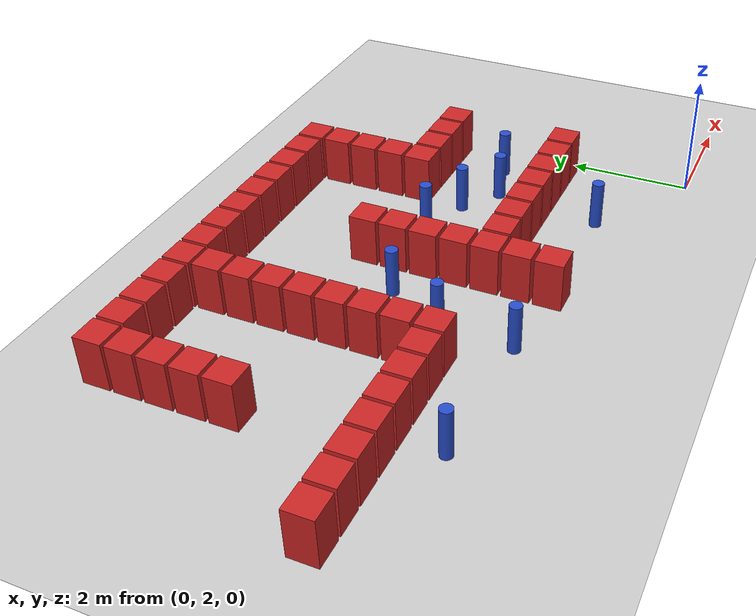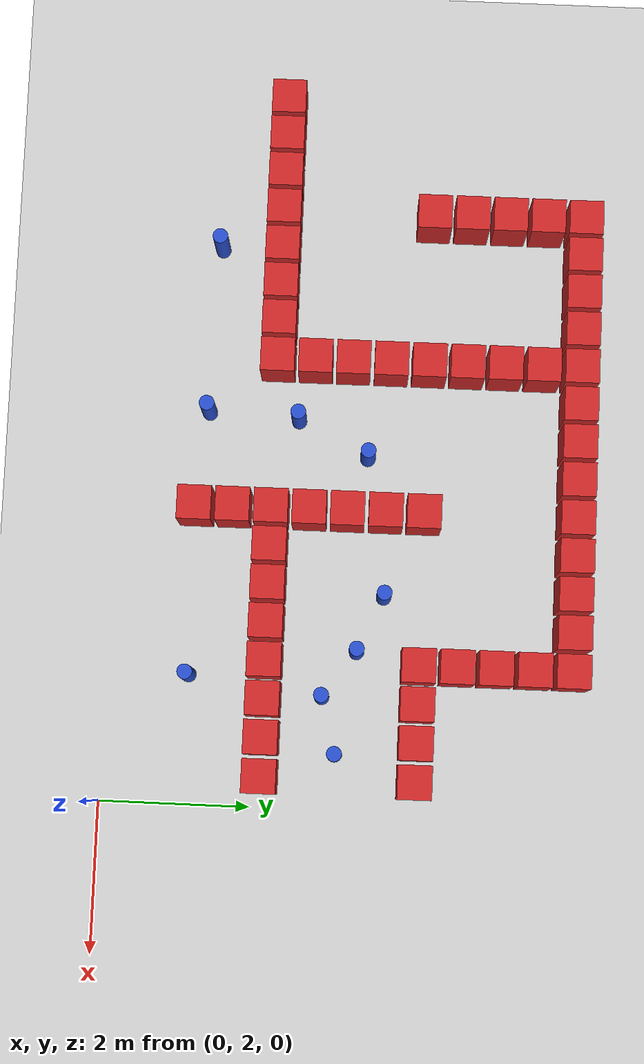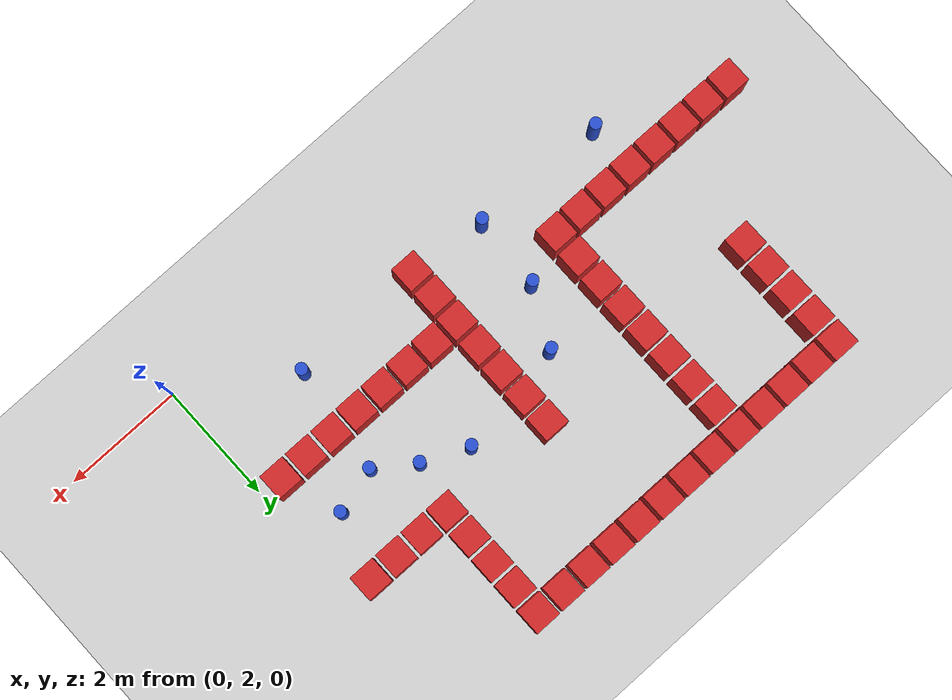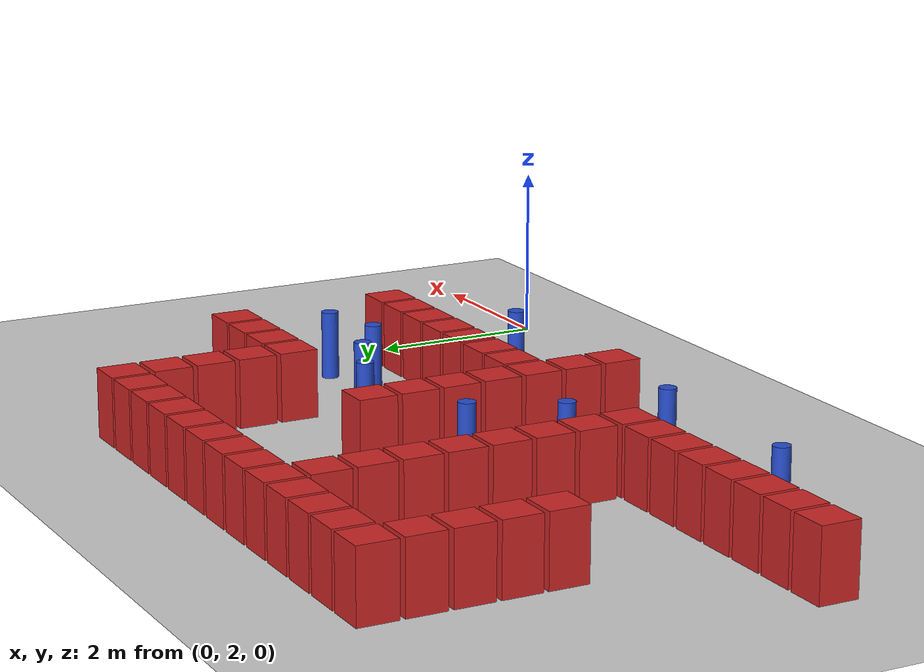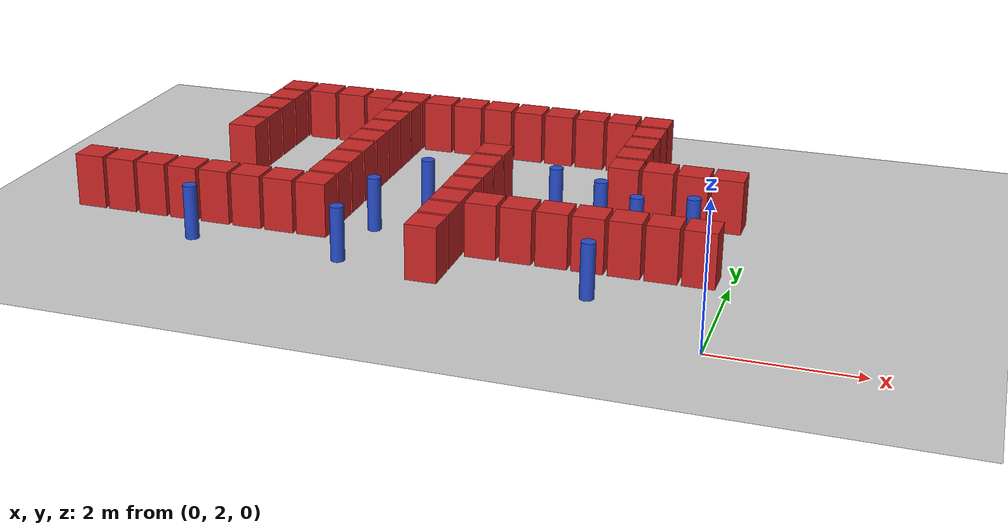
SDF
<sdf version="1.6">
 <world name="default">
  <model name="ground_plane">
   <static>1</static>
   <link name="link">
    <collision name="collision">
     <geometry><plane><normal>0 0 1</normal><size>100 100</size></plane></geometry>
     <surface><friction><ode><mu>100</mu><mu2>50</mu2></ode></friction></surface>
    </collision>
    <visual name="visual">
     <cast_shadows>0</cast_shadows>
     <geometry><plane><normal>0 0 1</normal><size>100 100</size></plane></geometry>
     <material>
      <script><uri>file://media/materials/scripts/gazebo.material</uri><name>Gazebo/Grey</name></script>
     </material>
    </visual>
   </link>
  </model>
  <model name="box_obstacle2">
   <static>0</static>
   <link name="box_obstacle">
    <pose>0 0 0.1 0 -0 0</pose>
    <inertial>
     <mass>100</mass>
     <inertia>
      <ixx>0.166667</ixx>
      <ixy>0</ixy>
      <ixz>0</ixz>
      <iyy>0.166667</iyy>
      <iyz>0</iyz>
      <izz>0.166667</izz>
     </inertia>
    </inertial>
    <collision name="collision"><geometry><box><size>0.45 0.45 0.8</size></box></geometry></collision>
    <visual name="visual">
     <geometry><box><size>0.45 0.45 0.8</size></box></geometry>
     <material>
      <script><name>Gazebo/Red</name><uri>file://media/materials/scripts/gazebo.material</uri></script>
     </material>
    </visual>
   </link>
   <pose>-9.49545 4.13973 0.299997 -3e-06 5e-06 -4e-06</pose>
  </model>
  <model name="box_obstacle5">
   <static>0</static>
   <link name="box_obstacle">
    <pose>0 0 0.1 0 -0 0</pose>
    <inertial>
     <mass>100</mass>
     <inertia>
      <ixx>0.166667</ixx>
      <ixy>0</ixy>
      <ixz>0</ixz>
      <iyy>0.166667</iyy>
      <iyz>0</iyz>
      <izz>0.166667</izz>
     </inertia>
    </inertial>
    <collision name="collision"><geometry><box><size>0.45 0.45 0.8</size></box></geometry></collision>
    <visual name="visual">
     <geometry><box><size>0.45 0.45 0.8</size></box></geometry>
     <material>
      <script><name>Gazebo/Red</name><uri>file://media/materials/scripts/gazebo.material</uri></script>
     </material>
    </visual>
   </link>
   <pose>-8.99045 4.13973 0.299997 -3e-06 5e-06 -4e-06</pose>
  </model>
  <model name="box_obstacle8">
   <static>0</static>
   <link name="box_obstacle">
    <pose>0 0 0.1 0 -0 0</pose>
    <inertial>
     <mass>100</mass>
     <inertia>
      <ixx>0.166667</ixx>
      <ixy>0</ixy>
      <ixz>0</ixz>
      <iyy>0.166667</iyy>
      <iyz>0</iyz>
      <izz>0.166667</izz>
     </inertia>
    </inertial>
    <collision name="collision"><geometry><box><size>0.45 0.45 0.8</size></box></geometry></collision>
    <visual name="visual">
     <geometry><box><size>0.45 0.45 0.8</size></box></geometry>
     <material>
      <script><name>Gazebo/Red</name><uri>file://media/materials/scripts/gazebo.material</uri></script>
     </material>
    </visual>
   </link>
   <pose>-8.48545 4.13973 0.299997 -3e-06 5e-06 -4e-06</pose>
  </model>
  <model name="box_obstacle18">
   <static>0</static>
   <link name="box_obstacle">
    <pose>0 0 0.1 0 -0 0</pose>
    <inertial>
     <mass>100</mass>
     <inertia>
      <ixx>0.166667</ixx>
      <ixy>0</ixy>
      <ixz>0</ixz>
      <iyy>0.166667</iyy>
      <iyz>0</iyz>
      <izz>0.166667</izz>
     </inertia>
    </inertial>
    <collision name="collision"><geometry><box><size>0.45 0.45 0.8</size></box></geometry></collision>
    <visual name="visual">
     <geometry><box><size>0.45 0.45 0.8</size></box></geometry>
     <material>
      <script><name>Gazebo/Red</name><uri>file://media/materials/scripts/gazebo.material</uri></script>
     </material>
    </visual>
   </link>
   <pose>-7.98045 4.13973 0.299997 -3e-06 5e-06 -4e-06</pose>
  </model>
  <model name="box_obstacle19">
   <static>0</static>
   <link name="box_obstacle">
    <pose>0 0 0.1 0 -0 0</pose>
    <inertial>
     <mass>100</mass>
     <inertia>
      <ixx>0.166667</ixx>
      <ixy>0</ixy>
      <ixz>0</ixz>
      <iyy>0.166667</iyy>
      <iyz>0</iyz>
      <izz>0.166667</izz>
     </inertia>
    </inertial>
    <collision name="collision"><geometry><box><size>0.45 0.45 0.8</size></box></geometry></collision>
    <visual name="visual">
     <geometry><box><size>0.45 0.45 0.8</size></box></geometry>
     <material>
      <script><name>Gazebo/Red</name><uri>file://media/materials/scripts/gazebo.material</uri></script>
     </material>
    </visual>
   </link>
   <pose>-7.98045 6.15973 0.299997 -3e-06 5e-06 -4e-06</pose>
  </model>
  <model name="box_obstacle20">
   <static>0</static>
   <link name="box_obstacle">
    <pose>0 0 0.1 0 -0 0</pose>
    <inertial>
     <mass>100</mass>
     <inertia>
      <ixx>0.166667</ixx>
      <ixy>0</ixy>
      <ixz>0</ixz>
      <iyy>0.166667</iyy>
      <iyz>0</iyz>
      <izz>0.166667</izz>
     </inertia>
    </inertial>
    <collision name="collision"><geometry><box><size>0.45 0.45 0.8</size></box></geometry></collision>
    <visual name="visual">
     <geometry><box><size>0.45 0.45 0.8</size></box></geometry>
     <material>
      <script><name>Gazebo/Red</name><uri>file://media/materials/scripts/gazebo.material</uri></script>
     </material>
    </visual>
   </link>
   <pose>-7.98045 6.66473 0.299997 -3e-06 5e-06 -4e-06</pose>
  </model>
  <model name="box_obstacle21">
   <static>0</static>
   <link name="box_obstacle">
    <pose>0 0 0.1 0 -0 0</pose>
    <inertial>
     <mass>100</mass>
     <inertia>
      <ixx>0.166667</ixx>
      <ixy>0</ixy>
      <ixz>0</ixz>
      <iyy>0.166667</iyy>
      <iyz>0</iyz>
      <izz>0.166667</izz>
     </inertia>
    </inertial>
    <collision name="collision"><geometry><box><size>0.45 0.45 0.8</size></box></geometry></collision>
    <visual name="visual">
     <geometry><box><size>0.45 0.45 0.8</size></box></geometry>
     <material>
      <script><name>Gazebo/Red</name><uri>file://media/materials/scripts/gazebo.material</uri></script>
     </material>
    </visual>
   </link>
   <pose>-7.98045 7.16973 0.299997 -3e-06 5e-06 -4e-06</pose>
  </model>
  <model name="box_obstacle22">
   <static>0</static>
   <link name="box_obstacle">
    <pose>0 0 0.1 0 -0 0</pose>
    <inertial>
     <mass>100</mass>
     <inertia>
      <ixx>0.166667</ixx>
      <ixy>0</ixy>
      <ixz>0</ixz>
      <iyy>0.166667</iyy>
      <iyz>0</iyz>
      <izz>0.166667</izz>
     </inertia>
    </inertial>
    <collision name="collision"><geometry><box><size>0.45 0.45 0.8</size></box></geometry></collision>
    <visual name="visual">
     <geometry><box><size>0.45 0.45 0.8</size></box></geometry>
     <material>
      <script><name>Gazebo/Red</name><uri>file://media/materials/scripts/gazebo.material</uri></script>
     </material>
    </visual>
   </link>
   <pose>-7.98045 7.67473 0.299997 -3e-06 5e-06 -4e-06</pose>
  </model>
  <model name="box_obstacle23">
   <static>0</static>
   <link name="box_obstacle">
    <pose>0 0 0.1 0 -0 0</pose>
    <inertial>
     <mass>100</mass>
     <inertia>
      <ixx>0.166667</ixx>
      <ixy>0</ixy>
      <ixz>0</ixz>
      <iyy>0.166667</iyy>
      <iyz>0</iyz>
      <izz>0.166667</izz>
     </inertia>
    </inertial>
    <collision name="collision"><geometry><box><size>0.45 0.45 0.8</size></box></geometry></collision>
    <visual name="visual">
     <geometry><box><size>0.45 0.45 0.8</size></box></geometry>
     <material>
      <script><name>Gazebo/Red</name><uri>file://media/materials/scripts/gazebo.material</uri></script>
     </material>
    </visual>
   </link>
   <pose>-7.98045 8.17973 0.299997 -3e-06 5e-06 -4e-06</pose>
  </model>
  <model name="box_obstacle29">
   <static>0</static>
   <link name="box_obstacle">
    <pose>0 0 0.1 0 -0 0</pose>
    <inertial>
     <mass>100</mass>
     <inertia>
      <ixx>0.166667</ixx>
      <ixy>0</ixy>
      <ixz>0</ixz>
      <iyy>0.166667</iyy>
      <iyz>0</iyz>
      <izz>0.166667</izz>
     </inertia>
    </inertial>
    <collision name="collision"><geometry><box><size>0.45 0.45 0.8</size></box></geometry></collision>
    <visual name="visual">
     <geometry><box><size>0.45 0.45 0.8</size></box></geometry>
     <material>
      <script><name>Gazebo/Red</name><uri>file://media/materials/scripts/gazebo.material</uri></script>
     </material>
    </visual>
   </link>
   <pose>-7.47545 4.13973 0.299997 -3e-06 5e-06 -4e-06</pose>
  </model>
  <model name="box_obstacle30">
   <static>0</static>
   <link name="box_obstacle">
    <pose>0 0 0.1 0 -0 0</pose>
    <inertial>
     <mass>100</mass>
     <inertia>
      <ixx>0.166667</ixx>
      <ixy>0</ixy>
      <ixz>0</ixz>
      <iyy>0.166667</iyy>
      <iyz>0</iyz>
      <izz>0.166667</izz>
     </inertia>
    </inertial>
    <collision name="collision"><geometry><box><size>0.45 0.45 0.8</size></box></geometry></collision>
    <visual name="visual">
     <geometry><box><size>0.45 0.45 0.8</size></box></geometry>
     <material>
      <script><name>Gazebo/Red</name><uri>file://media/materials/scripts/gazebo.material</uri></script>
     </material>
    </visual>
   </link>
   <pose>-7.47545 8.17973 0.299997 -3e-06 5e-06 -4e-06</pose>
  </model>
  <model name="box_obstacle36">
   <static>0</static>
   <link name="box_obstacle">
    <pose>0 0 0.1 0 -0 0</pose>
    <inertial>
     <mass>100</mass>
     <inertia>
      <ixx>0.166667</ixx>
      <ixy>0</ixy>
      <ixz>0</ixz>
      <iyy>0.166667</iyy>
      <iyz>0</iyz>
      <izz>0.166667</izz>
     </inertia>
    </inertial>
    <collision name="collision"><geometry><box><size>0.45 0.45 0.8</size></box></geometry></collision>
    <visual name="visual">
     <geometry><box><size>0.45 0.45 0.8</size></box></geometry>
     <material>
      <script><name>Gazebo/Red</name><uri>file://media/materials/scripts/gazebo.material</uri></script>
     </material>
    </visual>
   </link>
   <pose>-6.97045 4.13973 0.299997 -3e-06 5e-06 -4e-06</pose>
  </model>
  <model name="box_obstacle37">
   <static>0</static>
   <link name="box_obstacle">
    <pose>0 0 0.1 0 -0 0</pose>
    <inertial>
     <mass>100</mass>
     <inertia>
      <ixx>0.166667</ixx>
      <ixy>0</ixy>
      <ixz>0</ixz>
      <iyy>0.166667</iyy>
      <iyz>0</iyz>
      <izz>0.166667</izz>
     </inertia>
    </inertial>
    <collision name="collision"><geometry><box><size>0.45 0.45 0.8</size></box></geometry></collision>
    <visual name="visual">
     <geometry><box><size>0.45 0.45 0.8</size></box></geometry>
     <material>
      <script><name>Gazebo/Red</name><uri>file://media/materials/scripts/gazebo.material</uri></script>
     </material>
    </visual>
   </link>
   <pose>-6.97045 8.17973 0.299997 -3e-06 5e-06 -4e-06</pose>
  </model>
  <model name="box_obstacle43">
   <static>0</static>
   <link name="box_obstacle">
    <pose>0 0 0.1 0 -0 0</pose>
    <inertial>
     <mass>100</mass>
     <inertia>
      <ixx>0.166667</ixx>
      <ixy>0</ixy>
      <ixz>0</ixz>
      <iyy>0.166667</iyy>
      <iyz>0</iyz>
      <izz>0.166667</izz>
     </inertia>
    </inertial>
    <collision name="collision"><geometry><box><size>0.45 0.45 0.8</size></box></geometry></collision>
    <visual name="visual">
     <geometry><box><size>0.45 0.45 0.8</size></box></geometry>
     <material>
      <script><name>Gazebo/Red</name><uri>file://media/materials/scripts/gazebo.material</uri></script>
     </material>
    </visual>
   </link>
   <pose>-6.46545 4.13973 0.299997 -3e-06 5e-06 -4e-06</pose>
  </model>
  <model name="box_obstacle44">
   <static>0</static>
   <link name="box_obstacle">
    <pose>0 0 0.1 0 -0 0</pose>
    <inertial>
     <mass>100</mass>
     <inertia>
      <ixx>0.166667</ixx>
      <ixy>0</ixy>
      <ixz>0</ixz>
      <iyy>0.166667</iyy>
      <iyz>0</iyz>
      <izz>0.166667</izz>
     </inertia>
    </inertial>
    <collision name="collision"><geometry><box><size>0.45 0.45 0.8</size></box></geometry></collision>
    <visual name="visual">
     <geometry><box><size>0.45 0.45 0.8</size></box></geometry>
     <material>
      <script><name>Gazebo/Red</name><uri>file://media/materials/scripts/gazebo.material</uri></script>
     </material>
    </visual>
   </link>
   <pose>-6.46545 8.17973 0.299997 -3e-06 5e-06 -4e-06</pose>
  </model>
  <model name="box_obstacle57">
   <static>0</static>
   <link name="box_obstacle">
    <pose>0 0 0.1 0 -0 0</pose>
    <inertial>
     <mass>100</mass>
     <inertia>
      <ixx>0.166667</ixx>
      <ixy>0</ixy>
      <ixz>0</ixz>
      <iyy>0.166667</iyy>
      <iyz>0</iyz>
      <izz>0.166667</izz>
     </inertia>
    </inertial>
    <collision name="collision"><geometry><box><size>0.45 0.45 0.8</size></box></geometry></collision>
    <visual name="visual">
     <geometry><box><size>0.45 0.45 0.8</size></box></geometry>
     <material>
      <script><name>Gazebo/Red</name><uri>file://media/materials/scripts/gazebo.material</uri></script>
     </material>
    </visual>
   </link>
   <pose>-5.96045 4.13973 0.299997 -3e-06 5e-06 -4e-06</pose>
  </model>
  <model name="box_obstacle58">
   <static>0</static>
   <link name="box_obstacle">
    <pose>0 0 0.1 0 -0 0</pose>
    <inertial>
     <mass>100</mass>
     <inertia>
      <ixx>0.166667</ixx>
      <ixy>0</ixy>
      <ixz>0</ixz>
      <iyy>0.166667</iyy>
      <iyz>0</iyz>
      <izz>0.166667</izz>
     </inertia>
    </inertial>
    <collision name="collision"><geometry><box><size>0.45 0.45 0.8</size></box></geometry></collision>
    <visual name="visual">
     <geometry><box><size>0.45 0.45 0.8</size></box></geometry>
     <material>
      <script><name>Gazebo/Red</name><uri>file://media/materials/scripts/gazebo.material</uri></script>
     </material>
    </visual>
   </link>
   <pose>-5.96045 4.64473 0.299997 -3e-06 5e-06 -4e-06</pose>
  </model>
  <model name="box_obstacle59">
   <static>0</static>
   <link name="box_obstacle">
    <pose>0 0 0.1 0 -0 0</pose>
    <inertial>
     <mass>100</mass>
     <inertia>
      <ixx>0.166667</ixx>
      <ixy>0</ixy>
      <ixz>0</ixz>
      <iyy>0.166667</iyy>
      <iyz>0</iyz>
      <izz>0.166667</izz>
     </inertia>
    </inertial>
    <collision name="collision"><geometry><box><size>0.45 0.45 0.8</size></box></geometry></collision>
    <visual name="visual">
     <geometry><box><size>0.45 0.45 0.8</size></box></geometry>
     <material>
      <script><name>Gazebo/Red</name><uri>file://media/materials/scripts/gazebo.material</uri></script>
     </material>
    </visual>
   </link>
   <pose>-5.96045 5.14973 0.299997 -3e-06 5e-06 -4e-06</pose>
  </model>
  <model name="box_obstacle60">
   <static>0</static>
   <link name="box_obstacle">
    <pose>0 0 0.1 0 -0 0</pose>
    <inertial>
     <mass>100</mass>
     <inertia>
      <ixx>0.166667</ixx>
      <ixy>0</ixy>
      <ixz>0</ixz>
      <iyy>0.166667</iyy>
      <iyz>0</iyz>
      <izz>0.166667</izz>
     </inertia>
    </inertial>
    <collision name="collision"><geometry><box><size>0.45 0.45 0.8</size></box></geometry></collision>
    <visual name="visual">
     <geometry><box><size>0.45 0.45 0.8</size></box></geometry>
     <material>
      <script><name>Gazebo/Red</name><uri>file://media/materials/scripts/gazebo.material</uri></script>
     </material>
    </visual>
   </link>
   <pose>-5.96045 5.65473 0.299997 -3e-06 5e-06 -4e-06</pose>
  </model>
  <model name="box_obstacle61">
   <static>0</static>
   <link name="box_obstacle">
    <pose>0 0 0.1 0 -0 0</pose>
    <inertial>
     <mass>100</mass>
     <inertia>
      <ixx>0.166667</ixx>
      <ixy>0</ixy>
      <ixz>0</ixz>
      <iyy>0.166667</iyy>
      <iyz>0</iyz>
      <izz>0.166667</izz>
     </inertia>
    </inertial>
    <collision name="collision"><geometry><box><size>0.45 0.45 0.8</size></box></geometry></collision>
    <visual name="visual">
     <geometry><box><size>0.45 0.45 0.8</size></box></geometry>
     <material>
      <script><name>Gazebo/Red</name><uri>file://media/materials/scripts/gazebo.material</uri></script>
     </material>
    </visual>
   </link>
   <pose>-5.96045 6.15973 0.299997 -3e-06 5e-06 -4e-06</pose>
  </model>
  <model name="box_obstacle62">
   <static>0</static>
   <link name="box_obstacle">
    <pose>0 0 0.1 0 -0 0</pose>
    <inertial>
     <mass>100</mass>
     <inertia>
      <ixx>0.166667</ixx>
      <ixy>0</ixy>
      <ixz>0</ixz>
      <iyy>0.166667</iyy>
      <iyz>0</iyz>
      <izz>0.166667</izz>
     </inertia>
    </inertial>
    <collision name="collision"><geometry><box><size>0.45 0.45 0.8</size></box></geometry></collision>
    <visual name="visual">
     <geometry><box><size>0.45 0.45 0.8</size></box></geometry>
     <material>
      <script><name>Gazebo/Red</name><uri>file://media/materials/scripts/gazebo.material</uri></script>
     </material>
    </visual>
   </link>
   <pose>-5.96045 6.66473 0.299997 -3e-06 5e-06 -4e-06</pose>
  </model>
  <model name="box_obstacle63">
   <static>0</static>
   <link name="box_obstacle">
    <pose>0 0 0.1 0 -0 0</pose>
    <inertial>
     <mass>100</mass>
     <inertia>
      <ixx>0.166667</ixx>
      <ixy>0</ixy>
      <ixz>0</ixz>
      <iyy>0.166667</iyy>
      <iyz>0</iyz>
      <izz>0.166667</izz>
     </inertia>
    </inertial>
    <collision name="collision"><geometry><box><size>0.45 0.45 0.8</size></box></geometry></collision>
    <visual name="visual">
     <geometry><box><size>0.45 0.45 0.8</size></box></geometry>
     <material>
      <script><name>Gazebo/Red</name><uri>file://media/materials/scripts/gazebo.material</uri></script>
     </material>
    </visual>
   </link>
   <pose>-5.96045 7.16973 0.299997 -3e-06 5e-06 -4e-06</pose>
  </model>
  <model name="box_obstacle64">
   <static>0</static>
   <link name="box_obstacle">
    <pose>0 0 0.1 0 -0 0</pose>
    <inertial>
     <mass>100</mass>
     <inertia>
      <ixx>0.166667</ixx>
      <ixy>0</ixy>
      <ixz>0</ixz>
      <iyy>0.166667</iyy>
      <iyz>0</iyz>
      <izz>0.166667</izz>
     </inertia>
    </inertial>
    <collision name="collision"><geometry><box><size>0.45 0.45 0.8</size></box></geometry></collision>
    <visual name="visual">
     <geometry><box><size>0.45 0.45 0.8</size></box></geometry>
     <material>
      <script><name>Gazebo/Red</name><uri>file://media/materials/scripts/gazebo.material</uri></script>
     </material>
    </visual>
   </link>
   <pose>-5.96045 7.67473 0.299997 -3e-06 5e-06 -4e-06</pose>
  </model>
  <model name="box_obstacle65">
   <static>0</static>
   <link name="box_obstacle">
    <pose>0 0 0.1 0 -0 0</pose>
    <inertial>
     <mass>100</mass>
     <inertia>
      <ixx>0.166667</ixx>
      <ixy>0</ixy>
      <ixz>0</ixz>
      <iyy>0.166667</iyy>
      <iyz>0</iyz>
      <izz>0.166667</izz>
     </inertia>
    </inertial>
    <collision name="collision"><geometry><box><size>0.45 0.45 0.8</size></box></geometry></collision>
    <visual name="visual">
     <geometry><box><size>0.45 0.45 0.8</size></box></geometry>
     <material>
      <script><name>Gazebo/Red</name><uri>file://media/materials/scripts/gazebo.material</uri></script>
     </material>
    </visual>
   </link>
   <pose>-5.96045 8.17973 0.299997 -3e-06 5e-06 -4e-06</pose>
  </model>
  <model name="box_obstacle69">
   <static>0</static>
   <link name="box_obstacle">
    <pose>0 0 0.1 0 -0 0</pose>
    <inertial>
     <mass>100</mass>
     <inertia>
      <ixx>0.166667</ixx>
      <ixy>0</ixy>
      <ixz>0</ixz>
      <iyy>0.166667</iyy>
      <iyz>0</iyz>
      <izz>0.166667</izz>
     </inertia>
    </inertial>
    <collision name="collision"><geometry><box><size>0.45 0.45 0.8</size></box></geometry></collision>
    <visual name="visual">
     <geometry><box><size>0.45 0.45 0.8</size></box></geometry>
     <material>
      <script><name>Gazebo/Red</name><uri>file://media/materials/scripts/gazebo.material</uri></script>
     </material>
    </visual>
   </link>
   <pose>-5.45545 8.17973 0.299997 -3e-06 5e-06 -4e-06</pose>
  </model>
  <model name="box_obstacle73">
   <static>0</static>
   <link name="box_obstacle">
    <pose>0 0 0.1 0 -0 0</pose>
    <inertial>
     <mass>100</mass>
     <inertia>
      <ixx>0.166667</ixx>
      <ixy>0</ixy>
      <ixz>0</ixz>
      <iyy>0.166667</iyy>
      <iyz>0</iyz>
      <izz>0.166667</izz>
     </inertia>
    </inertial>
    <collision name="collision"><geometry><box><size>0.45 0.45 0.8</size></box></geometry></collision>
    <visual name="visual">
     <geometry><box><size>0.45 0.45 0.8</size></box></geometry>
     <material>
      <script><name>Gazebo/Red</name><uri>file://media/materials/scripts/gazebo.material</uri></script>
     </material>
    </visual>
   </link>
   <pose>-4.95045 8.17973 0.299997 -3e-06 5e-06 -4e-06</pose>
  </model>
  <model name="box_obstacle77">
   <static>0</static>
   <link name="box_obstacle">
    <pose>0 0 0.1 0 -0 0</pose>
    <inertial>
     <mass>100</mass>
     <inertia>
      <ixx>0.166667</ixx>
      <ixy>0</ixy>
      <ixz>0</ixz>
      <iyy>0.166667</iyy>
      <iyz>0</iyz>
      <izz>0.166667</izz>
     </inertia>
    </inertial>
    <collision name="collision"><geometry><box><size>0.45 0.45 0.8</size></box></geometry></collision>
    <visual name="visual">
     <geometry><box><size>0.45 0.45 0.8</size></box></geometry>
     <material>
      <script><name>Gazebo/Red</name><uri>file://media/materials/scripts/gazebo.material</uri></script>
     </material>
    </visual>
   </link>
   <pose>-4.44545 8.17973 0.299997 -3e-06 5e-06 -4e-06</pose>
  </model>
  <model name="box_obstacle94">
   <static>0</static>
   <link name="box_obstacle">
    <pose>0 0 0.1 0 -0 0</pose>
    <inertial>
     <mass>100</mass>
     <inertia>
      <ixx>0.166667</ixx>
      <ixy>0</ixy>
      <ixz>0</ixz>
      <iyy>0.166667</iyy>
      <iyz>0</iyz>
      <izz>0.166667</izz>
     </inertia>
    </inertial>
    <collision name="collision"><geometry><box><size>0.45 0.45 0.8</size></box></geometry></collision>
    <visual name="visual">
     <geometry><box><size>0.45 0.45 0.8</size></box></geometry>
     <material>
      <script><name>Gazebo/Red</name><uri>file://media/materials/scripts/gazebo.material</uri></script>
     </material>
    </visual>
   </link>
   <pose>-3.94045 3.12973 0.299997 -3e-06 5e-06 -4e-06</pose>
  </model>
  <model name="box_obstacle95">
   <static>0</static>
   <link name="box_obstacle">
    <pose>0 0 0.1 0 -0 0</pose>
    <inertial>
     <mass>100</mass>
     <inertia>
      <ixx>0.166667</ixx>
      <ixy>0</ixy>
      <ixz>0</ixz>
      <iyy>0.166667</iyy>
      <iyz>0</iyz>
      <izz>0.166667</izz>
     </inertia>
    </inertial>
    <collision name="collision"><geometry><box><size>0.45 0.45 0.8</size></box></geometry></collision>
    <visual name="visual">
     <geometry><box><size>0.45 0.45 0.8</size></box></geometry>
     <material>
      <script><name>Gazebo/Red</name><uri>file://media/materials/scripts/gazebo.material</uri></script>
     </material>
    </visual>
   </link>
   <pose>-3.94045 3.63473 0.299997 -3e-06 5e-06 -4e-06</pose>
  </model>
  <model name="box_obstacle96">
   <static>0</static>
   <link name="box_obstacle">
    <pose>0 0 0.1 0 -0 0</pose>
    <inertial>
     <mass>100</mass>
     <inertia>
      <ixx>0.166667</ixx>
      <ixy>0</ixy>
      <ixz>0</ixz>
      <iyy>0.166667</iyy>
      <iyz>0</iyz>
      <izz>0.166667</izz>
     </inertia>
    </inertial>
    <collision name="collision"><geometry><box><size>0.45 0.45 0.8</size></box></geometry></collision>
    <visual name="visual">
     <geometry><box><size>0.45 0.45 0.8</size></box></geometry>
     <material>
      <script><name>Gazebo/Red</name><uri>file://media/materials/scripts/gazebo.material</uri></script>
     </material>
    </visual>
   </link>
   <pose>-3.94045 4.13973 0.299997 -3e-06 5e-06 -4e-06</pose>
  </model>
  <model name="box_obstacle97">
   <static>0</static>
   <link name="box_obstacle">
    <pose>0 0 0.1 0 -0 0</pose>
    <inertial>
     <mass>100</mass>
     <inertia>
      <ixx>0.166667</ixx>
      <ixy>0</ixy>
      <ixz>0</ixz>
      <iyy>0.166667</iyy>
      <iyz>0</iyz>
      <izz>0.166667</izz>
     </inertia>
    </inertial>
    <collision name="collision"><geometry><box><size>0.45 0.45 0.8</size></box></geometry></collision>
    <visual name="visual">
     <geometry><box><size>0.45 0.45 0.8</size></box></geometry>
     <material>
      <script><name>Gazebo/Red</name><uri>file://media/materials/scripts/gazebo.material</uri></script>
     </material>
    </visual>
   </link>
   <pose>-3.94045 4.64473 0.299997 -3e-06 5e-06 -4e-06</pose>
  </model>
  <model name="box_obstacle98">
   <static>0</static>
   <link name="box_obstacle">
    <pose>0 0 0.1 0 -0 0</pose>
    <inertial>
     <mass>100</mass>
     <inertia>
      <ixx>0.166667</ixx>
      <ixy>0</ixy>
      <ixz>0</ixz>
      <iyy>0.166667</iyy>
      <iyz>0</iyz>
      <izz>0.166667</izz>
     </inertia>
    </inertial>
    <collision name="collision"><geometry><box><size>0.45 0.45 0.8</size></box></geometry></collision>
    <visual name="visual">
     <geometry><box><size>0.45 0.45 0.8</size></box></geometry>
     <material>
      <script><name>Gazebo/Red</name><uri>file://media/materials/scripts/gazebo.material</uri></script>
     </material>
    </visual>
   </link>
   <pose>-3.94045 5.14973 0.299997 -3e-06 5e-06 -4e-06</pose>
  </model>
  <model name="box_obstacle99">
   <static>0</static>
   <link name="box_obstacle">
    <pose>0 0 0.1 0 -0 0</pose>
    <inertial>
     <mass>100</mass>
     <inertia>
      <ixx>0.166667</ixx>
      <ixy>0</ixy>
      <ixz>0</ixz>
      <iyy>0.166667</iyy>
      <iyz>0</iyz>
      <izz>0.166667</izz>
     </inertia>
    </inertial>
    <collision name="collision"><geometry><box><size>0.45 0.45 0.8</size></box></geometry></collision>
    <visual name="visual">
     <geometry><box><size>0.45 0.45 0.8</size></box></geometry>
     <material>
      <script><name>Gazebo/Red</name><uri>file://media/materials/scripts/gazebo.material</uri></script>
     </material>
    </visual>
   </link>
   <pose>-3.94045 5.65473 0.299997 -3e-06 5e-06 -4e-06</pose>
  </model>
  <model name="box_obstacle100">
   <static>0</static>
   <link name="box_obstacle">
    <pose>0 0 0.1 0 -0 0</pose>
    <inertial>
     <mass>100</mass>
     <inertia>
      <ixx>0.166667</ixx>
      <ixy>0</ixy>
      <ixz>0</ixz>
      <iyy>0.166667</iyy>
      <iyz>0</iyz>
      <izz>0.166667</izz>
     </inertia>
    </inertial>
    <collision name="collision"><geometry><box><size>0.45 0.45 0.8</size></box></geometry></collision>
    <visual name="visual">
     <geometry><box><size>0.45 0.45 0.8</size></box></geometry>
     <material>
      <script><name>Gazebo/Red</name><uri>file://media/materials/scripts/gazebo.material</uri></script>
     </material>
    </visual>
   </link>
   <pose>-3.94045 6.15973 0.299997 -3e-06 5e-06 -4e-06</pose>
  </model>
  <model name="box_obstacle101">
   <static>0</static>
   <link name="box_obstacle">
    <pose>0 0 0.1 0 -0 0</pose>
    <inertial>
     <mass>100</mass>
     <inertia>
      <ixx>0.166667</ixx>
      <ixy>0</ixy>
      <ixz>0</ixz>
      <iyy>0.166667</iyy>
      <iyz>0</iyz>
      <izz>0.166667</izz>
     </inertia>
    </inertial>
    <collision name="collision"><geometry><box><size>0.45 0.45 0.8</size></box></geometry></collision>
    <visual name="visual">
     <geometry><box><size>0.45 0.45 0.8</size></box></geometry>
     <material>
      <script><name>Gazebo/Red</name><uri>file://media/materials/scripts/gazebo.material</uri></script>
     </material>
    </visual>
   </link>
   <pose>-3.94045 8.17973 0.299997 -3e-06 5e-06 -4e-06</pose>
  </model>
  <model name="box_obstacle105">
   <static>0</static>
   <link name="box_obstacle">
    <pose>0 0 0.1 0 -0 0</pose>
    <inertial>
     <mass>100</mass>
     <inertia>
      <ixx>0.166667</ixx>
      <ixy>0</ixy>
      <ixz>0</ixz>
      <iyy>0.166667</iyy>
      <iyz>0</iyz>
      <izz>0.166667</izz>
     </inertia>
    </inertial>
    <collision name="collision"><geometry><box><size>0.45 0.45 0.8</size></box></geometry></collision>
    <visual name="visual">
     <geometry><box><size>0.45 0.45 0.8</size></box></geometry>
     <material>
      <script><name>Gazebo/Red</name><uri>file://media/materials/scripts/gazebo.material</uri></script>
     </material>
    </visual>
   </link>
   <pose>-3.43545 4.13973 0.299997 -3e-06 5e-06 -4e-06</pose>
  </model>
  <model name="box_obstacle106">
   <static>0</static>
   <link name="box_obstacle">
    <pose>0 0 0.1 0 -0 0</pose>
    <inertial>
     <mass>100</mass>
     <inertia>
      <ixx>0.166667</ixx>
      <ixy>0</ixy>
      <ixz>0</ixz>
      <iyy>0.166667</iyy>
      <iyz>0</iyz>
      <izz>0.166667</izz>
     </inertia>
    </inertial>
    <collision name="collision"><geometry><box><size>0.45 0.45 0.8</size></box></geometry></collision>
    <visual name="visual">
     <geometry><box><size>0.45 0.45 0.8</size></box></geometry>
     <material>
      <script><name>Gazebo/Red</name><uri>file://media/materials/scripts/gazebo.material</uri></script>
     </material>
    </visual>
   </link>
   <pose>-3.43545 8.17973 0.299997 -3e-06 5e-06 -4e-06</pose>
  </model>
  <model name="box_obstacle110">
   <static>0</static>
   <link name="box_obstacle">
    <pose>0 0 0.1 0 -0 0</pose>
    <inertial>
     <mass>100</mass>
     <inertia>
      <ixx>0.166667</ixx>
      <ixy>0</ixy>
      <ixz>0</ixz>
      <iyy>0.166667</iyy>
      <iyz>0</iyz>
      <izz>0.166667</izz>
     </inertia>
    </inertial>
    <collision name="collision"><geometry><box><size>0.45 0.45 0.8</size></box></geometry></collision>
    <visual name="visual">
     <geometry><box><size>0.45 0.45 0.8</size></box></geometry>
     <material>
      <script><name>Gazebo/Red</name><uri>file://media/materials/scripts/gazebo.material</uri></script>
     </material>
    </visual>
   </link>
   <pose>-2.93045 4.13973 0.299997 -3e-06 5e-06 -4e-06</pose>
  </model>
  <model name="box_obstacle111">
   <static>0</static>
   <link name="box_obstacle">
    <pose>0 0 0.1 0 -0 0</pose>
    <inertial>
     <mass>100</mass>
     <inertia>
      <ixx>0.166667</ixx>
      <ixy>0</ixy>
      <ixz>0</ixz>
      <iyy>0.166667</iyy>
      <iyz>0</iyz>
      <izz>0.166667</izz>
     </inertia>
    </inertial>
    <collision name="collision"><geometry><box><size>0.45 0.45 0.8</size></box></geometry></collision>
    <visual name="visual">
     <geometry><box><size>0.45 0.45 0.8</size></box></geometry>
     <material>
      <script><name>Gazebo/Red</name><uri>file://media/materials/scripts/gazebo.material</uri></script>
     </material>
    </visual>
   </link>
   <pose>-2.93045 8.17973 0.299997 -3e-06 5e-06 -4e-06</pose>
  </model>
  <model name="box_obstacle115">
   <static>0</static>
   <link name="box_obstacle">
    <pose>0 0 0.1 0 -0 0</pose>
    <inertial>
     <mass>100</mass>
     <inertia>
      <ixx>0.166667</ixx>
      <ixy>0</ixy>
      <ixz>0</ixz>
      <iyy>0.166667</iyy>
      <iyz>0</iyz>
      <izz>0.166667</izz>
     </inertia>
    </inertial>
    <collision name="collision"><geometry><box><size>0.45 0.45 0.8</size></box></geometry></collision>
    <visual name="visual">
     <geometry><box><size>0.45 0.45 0.8</size></box></geometry>
     <material>
      <script><name>Gazebo/Red</name><uri>file://media/materials/scripts/gazebo.material</uri></script>
     </material>
    </visual>
   </link>
   <pose>-2.42545 4.13973 0.299997 -3e-06 5e-06 -4e-06</pose>
  </model>
  <model name="box_obstacle116">
   <static>0</static>
   <link name="box_obstacle">
    <pose>0 0 0.1 0 -0 0</pose>
    <inertial>
     <mass>100</mass>
     <inertia>
      <ixx>0.166667</ixx>
      <ixy>0</ixy>
      <ixz>0</ixz>
      <iyy>0.166667</iyy>
      <iyz>0</iyz>
      <izz>0.166667</izz>
     </inertia>
    </inertial>
    <collision name="collision"><geometry><box><size>0.45 0.45 0.8</size></box></geometry></collision>
    <visual name="visual">
     <geometry><box><size>0.45 0.45 0.8</size></box></geometry>
     <material>
      <script><name>Gazebo/Red</name><uri>file://media/materials/scripts/gazebo.material</uri></script>
     </material>
    </visual>
   </link>
   <pose>-2.42545 8.17973 0.299997 -3e-06 5e-06 -4e-06</pose>
  </model>
  <model name="box_obstacle129">
   <static>0</static>
   <link name="box_obstacle">
    <pose>0 0 0.1 0 -0 0</pose>
    <inertial>
     <mass>100</mass>
     <inertia>
      <ixx>0.166667</ixx>
      <ixy>0</ixy>
      <ixz>0</ixz>
      <iyy>0.166667</iyy>
      <iyz>0</iyz>
      <izz>0.166667</izz>
     </inertia>
    </inertial>
    <collision name="collision"><geometry><box><size>0.45 0.45 0.8</size></box></geometry></collision>
    <visual name="visual">
     <geometry><box><size>0.45 0.45 0.8</size></box></geometry>
     <material>
      <script><name>Gazebo/Red</name><uri>file://media/materials/scripts/gazebo.material</uri></script>
     </material>
    </visual>
   </link>
   <pose>-1.92045 4.13973 0.299997 -3e-06 5e-06 -4e-06</pose>
  </model>
  <model name="box_obstacle130">
   <static>0</static>
   <link name="box_obstacle">
    <pose>0 0 0.1 0 -0 0</pose>
    <inertial>
     <mass>100</mass>
     <inertia>
      <ixx>0.166667</ixx>
      <ixy>0</ixy>
      <ixz>0</ixz>
      <iyy>0.166667</iyy>
      <iyz>0</iyz>
      <izz>0.166667</izz>
     </inertia>
    </inertial>
    <collision name="collision"><geometry><box><size>0.45 0.45 0.8</size></box></geometry></collision>
    <visual name="visual">
     <geometry><box><size>0.45 0.45 0.8</size></box></geometry>
     <material>
      <script><name>Gazebo/Red</name><uri>file://media/materials/scripts/gazebo.material</uri></script>
     </material>
    </visual>
   </link>
   <pose>-1.92045 6.15973 0.299997 -3e-06 5e-06 -4e-06</pose>
  </model>
  <model name="box_obstacle131">
   <static>0</static>
   <link name="box_obstacle">
    <pose>0 0 0.1 0 -0 0</pose>
    <inertial>
     <mass>100</mass>
     <inertia>
      <ixx>0.166667</ixx>
      <ixy>0</ixy>
      <ixz>0</ixz>
      <iyy>0.166667</iyy>
      <iyz>0</iyz>
      <izz>0.166667</izz>
     </inertia>
    </inertial>
    <collision name="collision"><geometry><box><size>0.45 0.45 0.8</size></box></geometry></collision>
    <visual name="visual">
     <geometry><box><size>0.45 0.45 0.8</size></box></geometry>
     <material>
      <script><name>Gazebo/Red</name><uri>file://media/materials/scripts/gazebo.material</uri></script>
     </material>
    </visual>
   </link>
   <pose>-1.92045 6.66473 0.299997 -3e-06 5e-06 -4e-06</pose>
  </model>
  <model name="box_obstacle132">
   <static>0</static>
   <link name="box_obstacle">
    <pose>0 0 0.1 0 -0 0</pose>
    <inertial>
     <mass>100</mass>
     <inertia>
      <ixx>0.166667</ixx>
      <ixy>0</ixy>
      <ixz>0</ixz>
      <iyy>0.166667</iyy>
      <iyz>0</iyz>
      <izz>0.166667</izz>
     </inertia>
    </inertial>
    <collision name="collision"><geometry><box><size>0.45 0.45 0.8</size></box></geometry></collision>
    <visual name="visual">
     <geometry><box><size>0.45 0.45 0.8</size></box></geometry>
     <material>
      <script><name>Gazebo/Red</name><uri>file://media/materials/scripts/gazebo.material</uri></script>
     </material>
    </visual>
   </link>
   <pose>-1.92045 7.16973 0.299997 -3e-06 5e-06 -4e-06</pose>
  </model>
  <model name="box_obstacle133">
   <static>0</static>
   <link name="box_obstacle">
    <pose>0 0 0.1 0 -0 0</pose>
    <inertial>
     <mass>100</mass>
     <inertia>
      <ixx>0.166667</ixx>
      <ixy>0</ixy>
      <ixz>0</ixz>
      <iyy>0.166667</iyy>
      <iyz>0</iyz>
      <izz>0.166667</izz>
     </inertia>
    </inertial>
    <collision name="collision"><geometry><box><size>0.45 0.45 0.8</size></box></geometry></collision>
    <visual name="visual">
     <geometry><box><size>0.45 0.45 0.8</size></box></geometry>
     <material>
      <script><name>Gazebo/Red</name><uri>file://media/materials/scripts/gazebo.material</uri></script>
     </material>
    </visual>
   </link>
   <pose>-1.92045 7.67473 0.299997 -3e-06 5e-06 -4e-06</pose>
  </model>
  <model name="box_obstacle134">
   <static>0</static>
   <link name="box_obstacle">
    <pose>0 0 0.1 0 -0 0</pose>
    <inertial>
     <mass>100</mass>
     <inertia>
      <ixx>0.166667</ixx>
      <ixy>0</ixy>
      <ixz>0</ixz>
      <iyy>0.166667</iyy>
      <iyz>0</iyz>
      <izz>0.166667</izz>
     </inertia>
    </inertial>
    <collision name="collision"><geometry><box><size>0.45 0.45 0.8</size></box></geometry></collision>
    <visual name="visual">
     <geometry><box><size>0.45 0.45 0.8</size></box></geometry>
     <material>
      <script><name>Gazebo/Red</name><uri>file://media/materials/scripts/gazebo.material</uri></script>
     </material>
    </visual>
   </link>
   <pose>-1.92045 8.17973 0.299997 -3e-06 5e-06 -4e-06</pose>
  </model>
  <model name="box_obstacle140">
   <static>0</static>
   <link name="box_obstacle">
    <pose>0 0 0.1 0 -0 0</pose>
    <inertial>
     <mass>100</mass>
     <inertia>
      <ixx>0.166667</ixx>
      <ixy>0</ixy>
      <ixz>0</ixz>
      <iyy>0.166667</iyy>
      <iyz>0</iyz>
      <izz>0.166667</izz>
     </inertia>
    </inertial>
    <collision name="collision"><geometry><box><size>0.45 0.45 0.8</size></box></geometry></collision>
    <visual name="visual">
     <geometry><box><size>0.45 0.45 0.8</size></box></geometry>
     <material>
      <script><name>Gazebo/Red</name><uri>file://media/materials/scripts/gazebo.material</uri></script>
     </material>
    </visual>
   </link>
   <pose>-1.41545 4.13973 0.299997 -3e-06 5e-06 -4e-06</pose>
  </model>
  <model name="box_obstacle141">
   <static>0</static>
   <link name="box_obstacle">
    <pose>0 0 0.1 0 -0 0</pose>
    <inertial>
     <mass>100</mass>
     <inertia>
      <ixx>0.166667</ixx>
      <ixy>0</ixy>
      <ixz>0</ixz>
      <iyy>0.166667</iyy>
      <iyz>0</iyz>
      <izz>0.166667</izz>
     </inertia>
    </inertial>
    <collision name="collision"><geometry><box><size>0.45 0.45 0.8</size></box></geometry></collision>
    <visual name="visual">
     <geometry><box><size>0.45 0.45 0.8</size></box></geometry>
     <material>
      <script><name>Gazebo/Red</name><uri>file://media/materials/scripts/gazebo.material</uri></script>
     </material>
    </visual>
   </link>
   <pose>-1.41545 6.15973 0.299997 -3e-06 5e-06 -4e-06</pose>
  </model>
  <model name="box_obstacle147">
   <static>0</static>
   <link name="box_obstacle">
    <pose>0 0 0.1 0 -0 0</pose>
    <inertial>
     <mass>100</mass>
     <inertia>
      <ixx>0.166667</ixx>
      <ixy>0</ixy>
      <ixz>0</ixz>
      <iyy>0.166667</iyy>
      <iyz>0</iyz>
      <izz>0.166667</izz>
     </inertia>
    </inertial>
    <collision name="collision"><geometry><box><size>0.45 0.45 0.8</size></box></geometry></collision>
    <visual name="visual">
     <geometry><box><size>0.45 0.45 0.8</size></box></geometry>
     <material>
      <script><name>Gazebo/Red</name><uri>file://media/materials/scripts/gazebo.material</uri></script>
     </material>
    </visual>
   </link>
   <pose>-0.910447 4.13973 0.299997 -3e-06 5e-06 -4e-06</pose>
  </model>
  <model name="box_obstacle148">
   <static>0</static>
   <link name="box_obstacle">
    <pose>0 0 0.1 0 -0 0</pose>
    <inertial>
     <mass>100</mass>
     <inertia>
      <ixx>0.166667</ixx>
      <ixy>0</ixy>
      <ixz>0</ixz>
      <iyy>0.166667</iyy>
      <iyz>0</iyz>
      <izz>0.166667</izz>
     </inertia>
    </inertial>
    <collision name="collision"><geometry><box><size>0.45 0.45 0.8</size></box></geometry></collision>
    <visual name="visual">
     <geometry><box><size>0.45 0.45 0.8</size></box></geometry>
     <material>
      <script><name>Gazebo/Red</name><uri>file://media/materials/scripts/gazebo.material</uri></script>
     </material>
    </visual>
   </link>
   <pose>-0.910447 6.15973 0.299997 -3e-06 5e-06 -4e-06</pose>
  </model>
  <model name="box_obstacle154">
   <static>0</static>
   <link name="box_obstacle">
    <pose>0 0 0.1 0 -0 0</pose>
    <inertial>
     <mass>100</mass>
     <inertia>
      <ixx>0.166667</ixx>
      <ixy>0</ixy>
      <ixz>0</ixz>
      <iyy>0.166667</iyy>
      <iyz>0</iyz>
      <izz>0.166667</izz>
     </inertia>
    </inertial>
    <collision name="collision"><geometry><box><size>0.45 0.45 0.8</size></box></geometry></collision>
    <visual name="visual">
     <geometry><box><size>0.45 0.45 0.8</size></box></geometry>
     <material>
      <script><name>Gazebo/Red</name><uri>file://media/materials/scripts/gazebo.material</uri></script>
     </material>
    </visual>
   </link>
   <pose>-0.405447 4.13973 0.299997 -3e-06 5e-06 -4e-06</pose>
  </model>
  <model name="box_obstacle155">
   <static>0</static>
   <link name="box_obstacle">
    <pose>0 0 0.1 0 -0 0</pose>
    <inertial>
     <mass>100</mass>
     <inertia>
      <ixx>0.166667</ixx>
      <ixy>0</ixy>
      <ixz>0</ixz>
      <iyy>0.166667</iyy>
      <iyz>0</iyz>
      <izz>0.166667</izz>
     </inertia>
    </inertial>
    <collision name="collision"><geometry><box><size>0.45 0.45 0.8</size></box></geometry></collision>
    <visual name="visual">
     <geometry><box><size>0.45 0.45 0.8</size></box></geometry>
     <material>
      <script><name>Gazebo/Red</name><uri>file://media/materials/scripts/gazebo.material</uri></script>
     </material>
    </visual>
   </link>
   <pose>-0.405447 6.15973 0.299997 -3e-06 5e-06 -4e-06</pose>
  </model>
  <model name="cylinder_obstacle11">
   <static>0</static>
   <link name="link">
    <pose>0 0 1 0 -0 0</pose>
    <inertial>
     <mass>100</mass>
     <inertia>
      <ixx>0.166667</ixx>
      <ixy>0</ixy>
      <ixz>0</ixz>
      <iyy>0.166667</iyy>
      <iyz>0</iyz>
      <izz>0.166667</izz>
     </inertia>
    </inertial>
    <collision name="collision">
     <geometry><cylinder><radius>0.1</radius><length>0.8</length></cylinder></geometry>
    </collision>
    <visual name="visual">
     <geometry><cylinder><radius>0.1</radius><length>0.8</length></cylinder></geometry>
     <material>
      <script><name>Gazebo/Blue</name><uri>file://media/materials/scripts/gazebo.material</uri></script>
     </material>
    </visual>
   </link>
   <pose>-5.26378 3.23353 -0.600002 3e-06 1e-06 0.003885</pose>
  </model>
  <model name="cylinder_obstacle27">
   <static>0</static>
   <link name="link">
    <pose>0 0 1 0 -0 0</pose>
    <inertial>
     <mass>100</mass>
     <inertia>
      <ixx>0.166667</ixx>
      <ixy>0</ixy>
      <ixz>0</ixz>
      <iyy>0.166667</iyy>
      <iyz>0</iyz>
      <izz>0.166667</izz>
     </inertia>
    </inertial>
    <collision name="collision">
     <geometry><cylinder><radius>0.1</radius><length>0.8</length></cylinder></geometry>
    </collision>
    <visual name="visual">
     <geometry><cylinder><radius>0.1</radius><length>0.8</length></cylinder></geometry>
     <material>
      <script><name>Gazebo/Blue</name><uri>file://media/materials/scripts/gazebo.material</uri></script>
     </material>
    </visual>
   </link>
   <pose>-1.71486 3.12014 -0.600002 3e-06 1e-06 0.003885</pose>
  </model>
  <model name="cylinder_obstacle52">
   <static>0</static>
   <link name="link">
    <pose>0 0 1 0 -0 0</pose>
    <inertial>
     <mass>100</mass>
     <inertia>
      <ixx>0.166667</ixx>
      <ixy>0</ixy>
      <ixz>0</ixz>
      <iyy>0.166667</iyy>
      <iyz>0</iyz>
      <izz>0.166667</izz>
     </inertia>
    </inertial>
    <collision name="collision">
     <geometry><cylinder><radius>0.1</radius><length>0.8</length></cylinder></geometry>
    </collision>
    <visual name="visual">
     <geometry><cylinder><radius>0.1</radius><length>0.8</length></cylinder></geometry>
     <material>
      <script><name>Gazebo/Blue</name><uri>file://media/materials/scripts/gazebo.material</uri></script>
     </material>
    </visual>
   </link>
   <pose>-7.52686 3.30572 -0.600002 3e-06 1e-06 0.003885</pose>
  </model>
  <model name="cylinder_obstacle59">
   <static>0</static>
   <link name="link">
    <pose>0 0 1 0 -0 0</pose>
    <inertial>
     <mass>100</mass>
     <inertia>
      <ixx>0.166667</ixx>
      <ixy>0</ixy>
      <ixz>0</ixz>
      <iyy>0.166667</iyy>
      <iyz>0</iyz>
      <izz>0.166667</izz>
     </inertia>
    </inertial>
    <collision name="collision">
     <geometry><cylinder><radius>0.1</radius><length>0.8</length></cylinder></geometry>
    </collision>
    <visual name="visual">
     <geometry><cylinder><radius>0.1</radius><length>0.8</length></cylinder></geometry>
     <material>
      <script><name>Gazebo/Blue</name><uri>file://media/materials/scripts/gazebo.material</uri></script>
     </material>
    </visual>
   </link>
   <pose>-5.19536 4.44713 -0.600002 3e-06 1e-06 0.003885</pose>
  </model>
  <model name="cylinder_obstacle74">
   <static>0</static>
   <link name="link">
    <pose>0 0 1 0 -0 0</pose>
    <inertial>
     <mass>100</mass>
     <inertia>
      <ixx>0.166667</ixx>
      <ixy>0</ixy>
      <ixz>0</ixz>
      <iyy>0.166667</iyy>
      <iyz>0</iyz>
      <izz>0.166667</izz>
     </inertia>
    </inertial>
    <collision name="collision">
     <geometry><cylinder><radius>0.1</radius><length>0.8</length></cylinder></geometry>
    </collision>
    <visual name="visual">
     <geometry><cylinder><radius>0.1</radius><length>0.8</length></cylinder></geometry>
     <material>
      <script><name>Gazebo/Blue</name><uri>file://media/materials/scripts/gazebo.material</uri></script>
     </material>
    </visual>
   </link>
   <pose>-2.10142 5.34305 -0.600002 3e-06 1e-06 0.003885</pose>
  </model>
  <model name="cylinder_obstacle81">
   <static>0</static>
   <link name="link">
    <pose>0 0 1 0 -0 0</pose>
    <inertial>
     <mass>100</mass>
     <inertia>
      <ixx>0.166667</ixx>
      <ixy>0</ixy>
      <ixz>0</ixz>
      <iyy>0.166667</iyy>
      <iyz>0</iyz>
      <izz>0.166667</izz>
     </inertia>
    </inertial>
    <collision name="collision">
     <geometry><cylinder><radius>0.1</radius><length>0.8</length></cylinder></geometry>
    </collision>
    <visual name="visual">
     <geometry><cylinder><radius>0.1</radius><length>0.8</length></cylinder></geometry>
     <material>
      <script><name>Gazebo/Blue</name><uri>file://media/materials/scripts/gazebo.material</uri></script>
     </material>
    </visual>
   </link>
   <pose>-0.730002 5.10284 -0.600002 3e-06 1e-06 0.003885</pose>
  </model>
  <model name="cylinder_obstacle87">
   <static>0</static>
   <link name="link">
    <pose>0 0 1 0 -0 0</pose>
    <inertial>
     <mass>100</mass>
     <inertia>
      <ixx>0.166667</ixx>
      <ixy>0</ixy>
      <ixz>0</ixz>
      <iyy>0.166667</iyy>
      <iyz>0</iyz>
      <izz>0.166667</izz>
     </inertia>
    </inertial>
    <collision name="collision">
     <geometry><cylinder><radius>0.1</radius><length>0.8</length></cylinder></geometry>
    </collision>
    <visual name="visual">
     <geometry><cylinder><radius>0.1</radius><length>0.8</length></cylinder></geometry>
     <material>
      <script><name>Gazebo/Blue</name><uri>file://media/materials/scripts/gazebo.material</uri></script>
     </material>
    </visual>
   </link>
   <pose>-2.84623 5.6755 -0.600002 3e-06 1e-06 0.003885</pose>
  </model>
  <model name="cylinder_obstacle88">
   <static>0</static>
   <link name="link">
    <pose>0 0 1 0 -0 0</pose>
    <inertial>
     <mass>100</mass>
     <inertia>
      <ixx>0.166667</ixx>
      <ixy>0</ixy>
      <ixz>0</ixz>
      <iyy>0.166667</iyy>
      <iyz>0</iyz>
      <izz>0.166667</izz>
     </inertia>
    </inertial>
    <collision name="collision">
     <geometry><cylinder><radius>0.1</radius><length>0.8</length></cylinder></geometry>
    </collision>
    <visual name="visual">
     <geometry><cylinder><radius>0.1</radius><length>0.8</length></cylinder></geometry>
     <material>
      <script><name>Gazebo/Blue</name><uri>file://media/materials/scripts/gazebo.material</uri></script>
     </material>
    </visual>
   </link>
   <pose>-4.71556 5.39257 -0.600002 3e-06 1e-06 0.003885</pose>
  </model>
  <model name="cylinder_obstacle100">
   <static>0</static>
   <link name="link">
    <pose>0 0 1 0 -0 0</pose>
    <inertial>
     <mass>100</mass>
     <inertia>
      <ixx>0.166667</ixx>
      <ixy>0</ixy>
      <ixz>0</ixz>
      <iyy>0.166667</iyy>
      <iyz>0</iyz>
      <izz>0.166667</izz>
     </inertia>
    </inertial>
    <collision name="collision">
     <geometry><cylinder><radius>0.1</radius><length>0.8</length></cylinder></geometry>
    </collision>
    <visual name="visual">
     <geometry><cylinder><radius>0.1</radius><length>0.8</length></cylinder></geometry>
     <material>
      <script><name>Gazebo/Blue</name><uri>file://media/materials/scripts/gazebo.material</uri></script>
     </material>
    </visual>
   </link>
   <pose>-1.48491 4.90308 -0.600002 3e-06 1e-06 0.003885</pose>
  </model>
 </world>
</sdf>
